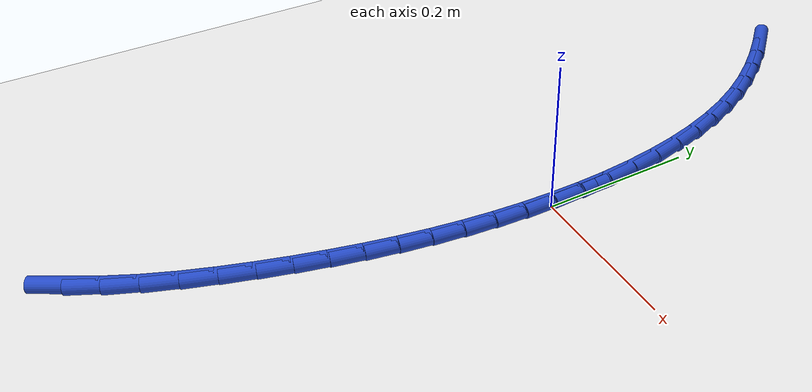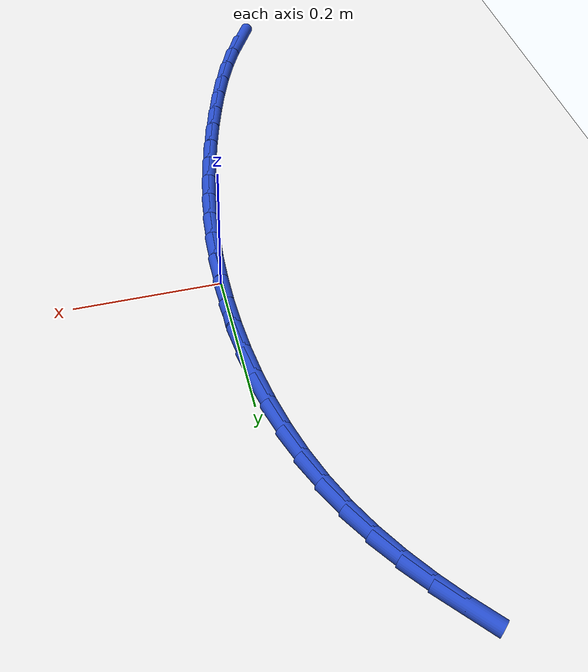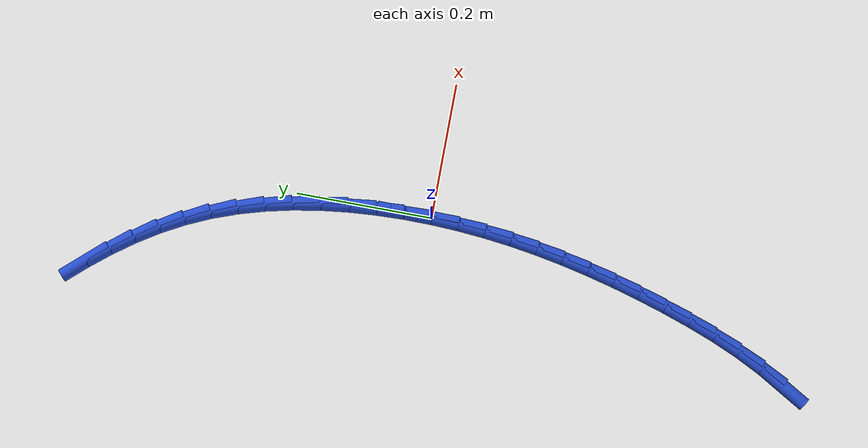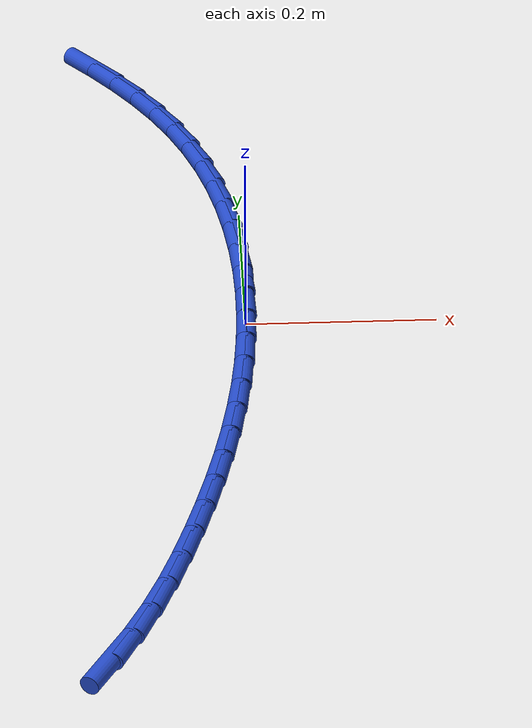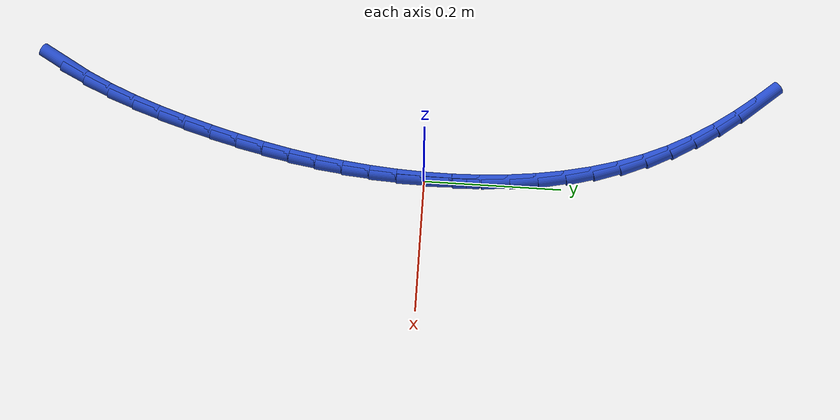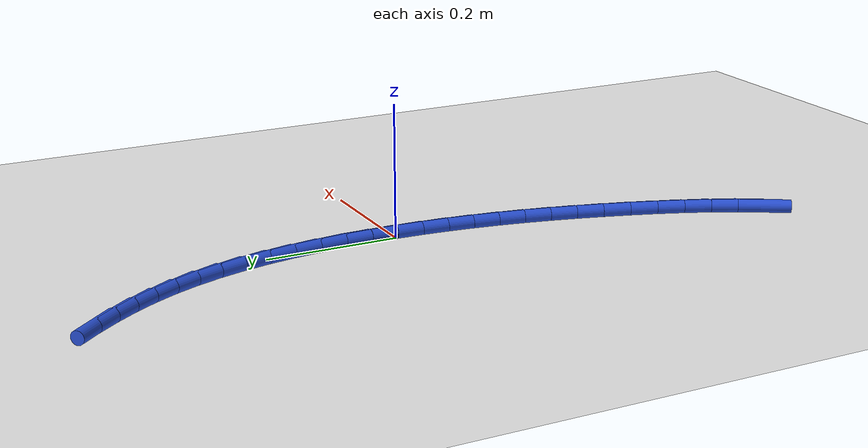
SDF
<sdf version="1.6">
 <world name="default">
  <model name="ground_plane">
   <static>1</static>
   <link name="link">
    <collision name="collision">
     <geometry><plane><normal>0 0 1</normal><size>100 100</size></plane></geometry>
     <surface><friction><ode><mu>100</mu><mu2>50</mu2></ode></friction></surface>
    </collision>
    <visual name="visual">
     <cast_shadows>0</cast_shadows>
     <geometry><plane><normal>0 0 1</normal><size>100 100</size></plane></geometry>
     <material>
      <script><uri>file://media/materials/scripts/gazebo.material</uri><name>Gazebo/WhiteGlow</name></script>
     </material>
    </visual>
   </link>
  </model>
  <model name="line">
   <link name="link_0">
    <pose>-2.6020852139652106e-18 6.938893903907228e-18 0.01 0 1.57 1.5633253272327496</pose>
    <collision name="collision">
     <geometry><cylinder><radius>0.01</radius><length>0.08</length></cylinder></geometry>
    </collision>
    <visual name="visual">
     <material>
      <script><name>Gazebo/Blue</name><uri>file://media/materials/scripts/gazebo.material</uri></script>
     </material>
     <geometry><cylinder><radius>0.01</radius><length>0.08</length></cylinder></geometry>
    </visual>
   </link>
   <link name="link_1">
    <pose>0.0003042947766367383 0.04072937129704035 0.01 0 1.57 -1.5384906134617957</pose>
    <collision name="collision">
     <geometry><cylinder><radius>0.01</radius><length>0.08</length></cylinder></geometry>
    </collision>
    <visual name="visual">
     <material>
      <script><name>Gazebo/Blue</name><uri>file://media/materials/scripts/gazebo.material</uri></script>
     </material>
     <geometry><cylinder><radius>0.01</radius><length>0.08</length></cylinder></geometry>
    </visual>
   </link>
   <link name="link_2">
    <pose>-0.0010194835033201144 0.08169171470189848 0.01 0 1.57 -1.4957892981733807</pose>
    <collision name="collision">
     <geometry><cylinder><radius>0.01</radius><length>0.08</length></cylinder></geometry>
    </collision>
    <visual name="visual">
     <material>
      <script><name>Gazebo/Blue</name><uri>file://media/materials/scripts/gazebo.material</uri></script>
     </material>
     <geometry><cylinder><radius>0.01</radius><length>0.08</length></cylinder></geometry>
    </visual>
   </link>
   <link name="link_3">
    <pose>-0.004097125028575866 0.12264611266009999 0.01 0 1.57 -1.4496088059122907</pose>
    <collision name="collision">
     <geometry><cylinder><radius>0.01</radius><length>0.08</length></cylinder></geometry>
    </collision>
    <visual name="visual">
     <material>
      <script><name>Gazebo/Blue</name><uri>file://media/materials/scripts/gazebo.material</uri></script>
     </material>
     <geometry><cylinder><radius>0.01</radius><length>0.08</length></cylinder></geometry>
    </visual>
   </link>
   <link name="link_4">
    <pose>-0.009054419987835828 0.16335164761717058 0.01 0 1.57 -1.3993612007990788</pose>
    <collision name="collision">
     <geometry><cylinder><radius>0.01</radius><length>0.08</length></cylinder></geometry>
    </collision>
    <visual name="visual">
     <material>
      <script><name>Gazebo/Blue</name><uri>file://media/materials/scripts/gazebo.material</uri></script>
     </material>
     <geometry><cylinder><radius>0.01</radius><length>0.08</length></cylinder></geometry>
    </visual>
   </link>
   <link name="link_5">
    <pose>-0.016017158569805304 0.2035674020186357 0.01 0 1.57 -1.344429467422364</pose>
    <collision name="collision">
     <geometry><cylinder><radius>0.01</radius><length>0.08</length></cylinder></geometry>
    </collision>
    <visual name="visual">
     <material>
      <script><name>Gazebo/Blue</name><uri>file://media/materials/scripts/gazebo.material</uri></script>
     </material>
     <geometry><cylinder><radius>0.01</radius><length>0.08</length></cylinder></geometry>
    </visual>
   </link>
   <link name="link_6">
    <pose>-0.025111130963189586 0.243052458310021 0.01 0 1.57 -1.2841830512068837</pose>
    <collision name="collision">
     <geometry><cylinder><radius>0.01</radius><length>0.08</length></cylinder></geometry>
    </collision>
    <visual name="visual">
     <material>
      <script><name>Gazebo/Blue</name><uri>file://media/materials/scripts/gazebo.material</uri></script>
     </material>
     <geometry><cylinder><radius>0.01</radius><length>0.08</length></cylinder></geometry>
    </visual>
   </link>
   <link name="link_7">
    <pose>-0.036462127356694005 0.2815658989368522 0.01 0 1.57 -1.2180096415096069</pose>
    <collision name="collision">
     <geometry><cylinder><radius>0.01</radius><length>0.08</length></cylinder></geometry>
    </collision>
    <visual name="visual">
     <material>
      <script><name>Gazebo/Blue</name><uri>file://media/materials/scripts/gazebo.material</uri></script>
     </material>
     <geometry><cylinder><radius>0.01</radius><length>0.08</length></cylinder></geometry>
    </visual>
   </link>
   <link name="link_8">
    <pose>-0.05019593793902387 0.3188668063446548 0.01 0 1.57 -1.145462141478098</pose>
    <collision name="collision">
     <geometry><cylinder><radius>0.01</radius><length>0.08</length></cylinder></geometry>
    </collision>
    <visual name="visual">
     <material>
      <script><name>Gazebo/Blue</name><uri>file://media/materials/scripts/gazebo.material</uri></script>
     </material>
     <geometry><cylinder><radius>0.01</radius><length>0.08</length></cylinder></geometry>
    </visual>
   </link>
   <link name="link_9">
    <pose>-0.06643571476601769 0.3547173231201787 0.01 0 1.57 -1.0710275845918307</pose>
    <collision name="collision">
     <geometry><cylinder><radius>0.01</radius><length>0.08</length></cylinder></geometry>
    </collision>
    <visual name="visual">
     <material>
      <script><name>Gazebo/Blue</name><uri>file://media/materials/scripts/gazebo.material</uri></script>
     </material>
     <geometry><cylinder><radius>0.01</radius><length>0.08</length></cylinder></geometry>
    </visual>
   </link>
   <link name="link_10">
    <pose>-0.08517223144054736 0.38903314619394175 0.01 0 1.57 -1.00225199730104</pose>
    <collision name="collision">
     <geometry><cylinder><radius>0.01</radius><length>0.08</length></cylinder></geometry>
    </collision>
    <visual name="visual">
     <material>
      <script><name>Gazebo/Blue</name><uri>file://media/materials/scripts/gazebo.material</uri></script>
     </material>
     <geometry><cylinder><radius>0.01</radius><length>0.08</length></cylinder></geometry>
    </visual>
   </link>
   <link name="link_11">
    <pose>-0.1062047296215902 0.42195214280663146 0.01 0 1.57 -0.9404609084484915</pose>
    <collision name="collision">
     <geometry><cylinder><radius>0.01</radius><length>0.08</length></cylinder></geometry>
    </collision>
    <visual name="visual">
     <material>
      <script><name>Gazebo/Blue</name><uri>file://media/materials/scripts/gazebo.material</uri></script>
     </material>
     <geometry><cylinder><radius>0.01</radius><length>0.08</length></cylinder></geometry>
    </visual>
   </link>
   <link name="link_12">
    <pose>-0.12931747375452649 0.4536295532392889 0.01 0 1.57 -0.8860819304791444</pose>
    <collision name="collision">
     <geometry><cylinder><radius>0.01</radius><length>0.08</length></cylinder></geometry>
    </collision>
    <visual name="visual">
     <material>
      <script><name>Gazebo/Blue</name><uri>file://media/materials/scripts/gazebo.material</uri></script>
     </material>
     <geometry><cylinder><radius>0.01</radius><length>0.08</length></cylinder></geometry>
    </visual>
   </link>
   <link name="link_13">
    <pose>-0.15429472828473656 0.4842206177729553 0.01 0 1.57 -0.8392480904718871</pose>
    <collision name="collision">
     <geometry><cylinder><radius>0.01</radius><length>0.08</length></cylinder></geometry>
    </collision>
    <visual name="visual">
     <material>
      <script><name>Gazebo/Blue</name><uri>file://media/materials/scripts/gazebo.material</uri></script>
     </material>
     <geometry><cylinder><radius>0.01</radius><length>0.08</length></cylinder></geometry>
    </visual>
   </link>
   <link name="link_166">
    <pose>-0.14824953908298857 -0.5463576554099068 0.01 0 1.57 1.0433275553064345</pose>
    <collision name="collision">
     <geometry><cylinder><radius>0.01</radius><length>0.08</length></cylinder></geometry>
    </collision>
    <visual name="visual">
     <material>
      <script><name>Gazebo/Blue</name><uri>file://media/materials/scripts/gazebo.material</uri></script>
     </material>
     <geometry><cylinder><radius>0.01</radius><length>0.08</length></cylinder></geometry>
    </visual>
   </link>
   <link name="link_167">
    <pose>-0.12771085478154712 -0.5110994337796572 0.01 0 1.57 1.1114051732201071</pose>
    <collision name="collision">
     <geometry><cylinder><radius>0.01</radius><length>0.08</length></cylinder></geometry>
    </collision>
    <visual name="visual">
     <material>
      <script><name>Gazebo/Blue</name><uri>file://media/materials/scripts/gazebo.material</uri></script>
     </material>
     <geometry><cylinder><radius>0.01</radius><length>0.08</length></cylinder></geometry>
    </visual>
   </link>
   <link name="link_168">
    <pose>-0.10934316797593312 -0.47396979524442034 0.01 0 1.57 1.1671951388286879</pose>
    <collision name="collision">
     <geometry><cylinder><radius>0.01</radius><length>0.08</length></cylinder></geometry>
    </collision>
    <visual name="visual">
     <material>
      <script><name>Gazebo/Blue</name><uri>file://media/materials/scripts/gazebo.material</uri></script>
     </material>
     <geometry><cylinder><radius>0.01</radius><length>0.08</length></cylinder></geometry>
    </visual>
   </link>
   <link name="link_169">
    <pose>-0.09289949520626092 -0.4354640471371158 0.01 0 1.57 1.2120994296358185</pose>
    <collision name="collision">
     <geometry><cylinder><radius>0.01</radius><length>0.08</length></cylinder></geometry>
    </collision>
    <visual name="visual">
     <material>
      <script><name>Gazebo/Blue</name><uri>file://media/materials/scripts/gazebo.material</uri></script>
     </material>
     <geometry><cylinder><radius>0.01</radius><length>0.08</length></cylinder></geometry>
    </visual>
   </link>
   <link name="link_170">
    <pose>-0.07813285301264443 -0.3960774967906613 0.01 0 1.57 1.2472535761606103</pose>
    <collision name="collision">
     <geometry><cylinder><radius>0.01</radius><length>0.08</length></cylinder></geometry>
    </collision>
    <visual name="visual">
     <material>
      <script><name>Gazebo/Blue</name><uri>file://media/materials/scripts/gazebo.material</uri></script>
     </material>
     <geometry><cylinder><radius>0.01</radius><length>0.08</length></cylinder></geometry>
    </visual>
   </link>
   <link name="link_171">
    <pose>-0.06479625793519851 -0.3563054515379779 0.01 0 1.57 1.273932614241459</pose>
    <collision name="collision">
     <geometry><cylinder><radius>0.01</radius><length>0.08</length></cylinder></geometry>
    </collision>
    <visual name="visual">
     <material>
      <script><name>Gazebo/Blue</name><uri>file://media/materials/scripts/gazebo.material</uri></script>
     </material>
     <geometry><cylinder><radius>0.01</radius><length>0.08</length></cylinder></geometry>
    </visual>
   </link>
   <link name="link_172">
    <pose>-0.05265562804963585 -0.3166176322131847 0.01 0 1.57 1.298618346405311</pose>
    <collision name="collision">
     <geometry><cylinder><radius>0.01</radius><length>0.08</length></cylinder></geometry>
    </collision>
    <visual name="visual">
     <material>
      <script><name>Gazebo/Blue</name><uri>file://media/materials/scripts/gazebo.material</uri></script>
     </material>
     <geometry><cylinder><radius>0.01</radius><length>0.08</length></cylinder></geometry>
    </visual>
   </link>
   <link name="link_173">
    <pose>-0.0416418691429309 -0.27715655380395665 0.01 0 1.57 1.3255195029557367</pose>
    <collision name="collision">
     <geometry><cylinder><radius>0.01</radius><length>0.08</length></cylinder></geometry>
    </collision>
    <visual name="visual">
     <material>
      <script><name>Gazebo/Blue</name><uri>file://media/materials/scripts/gazebo.material</uri></script>
     </material>
     <geometry><cylinder><radius>0.01</radius><length>0.08</length></cylinder></geometry>
    </visual>
   </link>
   <link name="link_174">
    <pose>-0.03179991924927084 -0.2378385810126775 0.01 0 1.57 1.354608794126639</pose>
    <collision name="collision">
     <geometry><cylinder><radius>0.01</radius><length>0.08</length></cylinder></geometry>
    </collision>
    <visual name="visual">
     <material>
      <script><name>Gazebo/Blue</name><uri>file://media/materials/scripts/gazebo.material</uri></script>
     </material>
     <geometry><cylinder><radius>0.01</radius><length>0.08</length></cylinder></geometry>
    </visual>
   </link>
   <link name="link_175">
    <pose>-0.02317698891934757 -0.19857557165645567 0.01 0 1.57 1.3857270466221765</pose>
    <collision name="collision">
     <geometry><cylinder><radius>0.01</radius><length>0.08</length></cylinder></geometry>
    </collision>
    <visual name="visual">
     <material>
      <script><name>Gazebo/Blue</name><uri>file://media/materials/scripts/gazebo.material</uri></script>
     </material>
     <geometry><cylinder><radius>0.01</radius><length>0.08</length></cylinder></geometry>
    </visual>
   </link>
   <link name="link_176">
    <pose>-0.015820288703852867 -0.1592793835523988 0.01 0 1.57 1.4186668011487793</pose>
    <collision name="collision">
     <geometry><cylinder><radius>0.01</radius><length>0.08</length></cylinder></geometry>
    </collision>
    <visual name="visual">
     <material>
      <script><name>Gazebo/Blue</name><uri>file://media/materials/scripts/gazebo.material</uri></script>
     </material>
     <geometry><cylinder><radius>0.01</radius><length>0.08</length></cylinder></geometry>
    </visual>
   </link>
   <link name="link_177">
    <pose>-0.009777029153478937 -0.11986187451761686 0.01 0 1.57 1.4531745731803989</pose>
    <collision name="collision">
     <geometry><cylinder><radius>0.01</radius><length>0.08</length></cylinder></geometry>
    </collision>
    <visual name="visual">
     <material>
      <script><name>Gazebo/Blue</name><uri>file://media/materials/scripts/gazebo.material</uri></script>
     </material>
     <geometry><cylinder><radius>0.01</radius><length>0.08</length></cylinder></geometry>
    </visual>
   </link>
   <link name="link_178">
    <pose>-0.005094420818917543 -0.08023490236921749 0.01 0 1.57 1.4889562096021085</pose>
    <collision name="collision">
     <geometry><cylinder><radius>0.01</radius><length>0.08</length></cylinder></geometry>
    </collision>
    <visual name="visual">
     <material>
      <script><name>Gazebo/Blue</name><uri>file://media/materials/scripts/gazebo.material</uri></script>
     </material>
     <geometry><cylinder><radius>0.01</radius><length>0.08</length></cylinder></geometry>
    </visual>
   </link>
   <link name="link_179">
    <pose>-0.0018196742508605934 -0.040310324924309034 0.01 0 1.57 1.5256853102310761</pose>
    <collision name="collision">
     <geometry><cylinder><radius>0.01</radius><length>0.08</length></cylinder></geometry>
    </collision>
    <visual name="visual">
     <material>
      <script><name>Gazebo/Blue</name><uri>file://media/materials/scripts/gazebo.material</uri></script>
     </material>
     <geometry><cylinder><radius>0.01</radius><length>0.08</length></cylinder></geometry>
    </visual>
   </link>
   <link name="link_180">
    <pose>-6.938893903907228e-18 -3.469446951953614e-17 0.01 0 1.57 1.5630142724130656</pose>
    <collision name="collision">
     <geometry><cylinder><radius>0.01</radius><length>0.08</length></cylinder></geometry>
    </collision>
    <visual name="visual">
     <material>
      <script><name>Gazebo/Blue</name><uri>file://media/materials/scripts/gazebo.material</uri></script>
     </material>
     <geometry><cylinder><radius>0.01</radius><length>0.08</length></cylinder></geometry>
    </visual>
   </link>
   <link name="link_181">
    <pose>0.00031739138297230164 0.04078421458660116 0.01 0 1.57 1.5630142724130656</pose>
    <collision name="collision">
     <geometry><cylinder><radius>0.01</radius><length>0.08</length></cylinder></geometry>
    </collision>
    <visual name="visual">
     <material>
      <script><name>Gazebo/Blue</name><uri>file://media/materials/scripts/gazebo.material</uri></script>
     </material>
     <geometry><cylinder><radius>0.01</radius><length>0.08</length></cylinder></geometry>
    </visual>
   </link>
  </model>
 </world>
</sdf>
